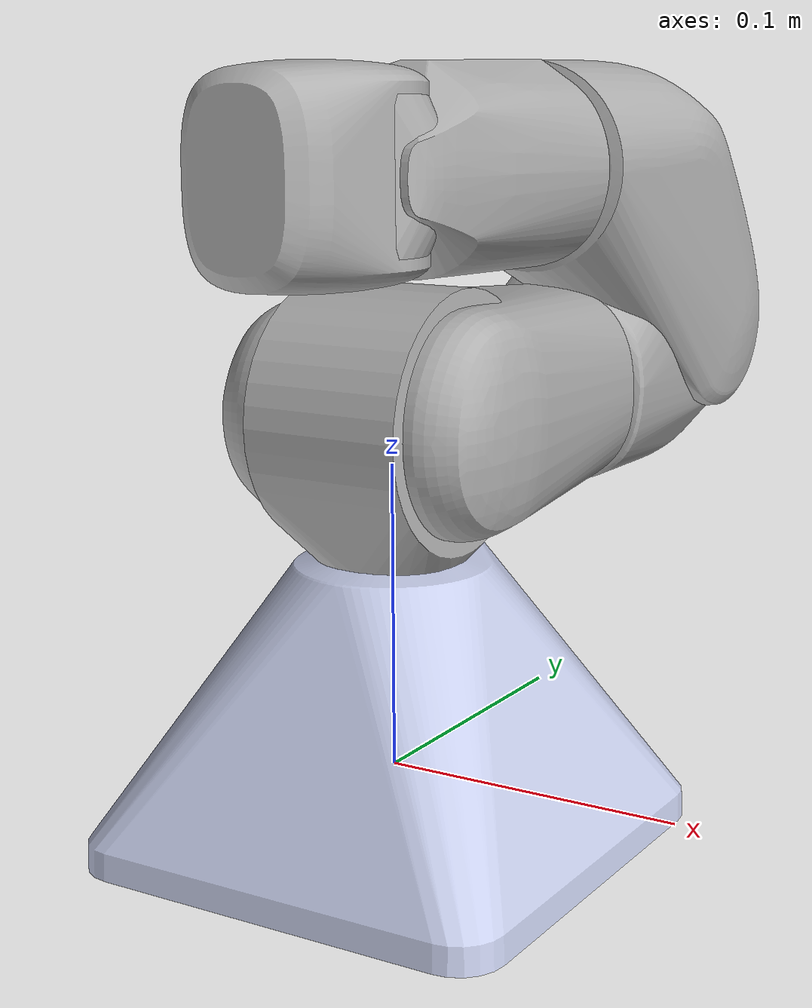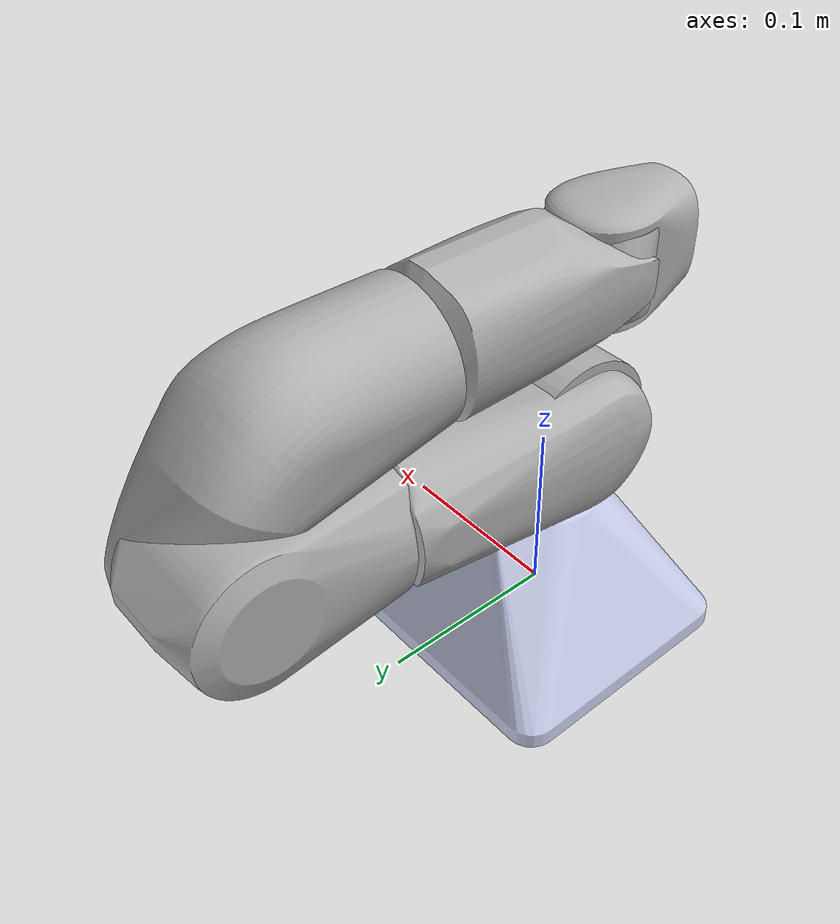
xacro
<?xml version="1.0"?>
<robot xmlns:xacro="http://www.ros.org/wiki/xacro" name="R1_Robotic_Arm">

  <!-- mesh 路径前缀：ROS2 默认 package://；MuJoCo 等外部工具用
       xacro ... mesh_prefix:=/abs/path/to/meshes 覆盖 -->
  <xacro:arg name="mesh_prefix" default="package://r1_arm_description/meshes"/>

  <!-- 法兰面相对 Link7 原点的偏移，待实测标定后修改 -->
  <xacro:property name="tool0_xyz" value="0 0 0"/>

  <material name="silvery">
    <color rgba="0.79216 0.81961 0.93333 1"/>
  </material>
  <material name="dark_gray">
    <color rgba="0.69804 0.69804 0.69804 1"/>
  </material>

  <xacro:macro name="r1_link"
               params="name mass com ixx ixy ixz iyy iyz izz material_name">
    <link name="${name}">
      <inertial>
        <origin xyz="${com}" rpy="0 0 0"/>
        <mass value="${mass}"/>
        <inertia ixx="${ixx}" ixy="${ixy}" ixz="${ixz}"
                 iyy="${iyy}" iyz="${iyz}" izz="${izz}"/>
      </inertial>
      <visual>
        <origin xyz="0 0 0" rpy="0 0 0"/>
        <geometry>
          <mesh filename="$(arg mesh_prefix)/visual/${name}.STL"/>
        </geometry>
        <material name="${material_name}"/>
      </visual>
      <collision>
        <origin xyz="0 0 0" rpy="0 0 0"/>
        <geometry>
          <mesh filename="$(arg mesh_prefix)/collision/${name}.STL"/>
        </geometry>
      </collision>
    </link>
  </xacro:macro>

  <xacro:macro name="r1_joint"
               params="name parent child xyz rpy axis lower upper effort velocity">
    <joint name="${name}" type="revolute">
      <origin xyz="${xyz}" rpy="${rpy}"/>
      <parent link="${parent}"/>
      <child link="${child}"/>
      <axis xyz="${axis}"/>
      <limit lower="${lower}" upper="${upper}" effort="${effort}" velocity="${velocity}"/>
    </joint>
  </xacro:macro>

  <!-- ===================== links（官方 inertial 参数） ===================== -->
  <xacro:r1_link name="base_link" mass="1.7759"
    com="-0.00010643 0.0010041 0.023203"
    ixx="0.0014112" ixy="1.7968E-06" ixz="1.2255E-06"
    iyy="0.001783"  iyz="-8.2296E-06" izz="0.0025584"
    material_name="silvery"/>

  <xacro:r1_link name="Link1" mass="0.89452"
    com="2.156E-08 -9.6233E-09 0.045314"
    ixx="0.00082526" ixy="1.1484E-09" ixz="-7.1331E-10"
    iyy="0.0006531"  iyz="5.9698E-10" izz="0.00059909"
    material_name="dark_gray"/>

  <xacro:r1_link name="Link2" mass="0.74773"
    com="0.0017013 0.063321 -0.0042531"
    ixx="0.001137" ixy="9.3E-05" ixz="-6E-06"
    iyy="0.000672" iyz="3.2E-05" izz="0.001314"
    material_name="dark_gray"/>

  <xacro:r1_link name="Link3" mass="0.71845"
    com="-0.0062069 0.075751 0.012556"
    ixx="0.000746" ixy="2.9E-05" ixz="1.3E-05"
    iyy="0.000558" iyz="-0.000086" izz="0.000728"
    material_name="dark_gray"/>

  <xacro:r1_link name="Link4" mass="0.85572"
    com="-0.020915 -0.070455 0.060056"
    ixx="0.001009" ixy="-8.4E-05" ixz="6.3E-05"
    iyy="0.000707" iyz="0.000139" izz="0.00093"
    material_name="dark_gray"/>

  <xacro:r1_link name="Link5" mass="0.59294"
    com="0.00042498 -0.043121 0.00020709"
    ixx="0.000506" ixy="2E-06" ixz="-1E-06"
    iyy="0.000349" iyz="-1E-06" izz="0.000501"
    material_name="dark_gray"/>

  <xacro:r1_link name="Link6" mass="0.391"
    com="-1.3033E-07 -0.0098039 8.3267E-17"
    ixx="0.00014242" ixy="0" ixz="0"
    iyy="0.00014737" iyz="0" izz="0.00015188"
    material_name="dark_gray"/>

  <xacro:r1_link name="Link7" mass="0.1048"
    com="-3.7143E-07 -0.018577 0.00595"
    ixx="0.000105" ixy="0" ixz="0"
    iyy="7.3E-05" iyz="0" izz="6.7E-05"
    material_name="dark_gray"/>

  <!-- ===================== joints（官方 origin/axis/limit，勿改） ===================== -->
  <xacro:r1_joint name="J1" parent="base_link" child="Link1"
    xyz="0 0 0.069" rpy="0 0 0" axis="0 0 -1"
    lower="-2.723" upper="2.723" effort="60" velocity="18.7"/>

  <xacro:r1_joint name="J2" parent="Link1" child="Link2"
    xyz="0 0 0.0469" rpy="0 0 0" axis="1 0 0"
    lower="0" upper="3.1416" effort="60" velocity="18.7"/>

  <xacro:r1_joint name="J3" parent="Link2" child="Link3"
    xyz="0 0.1085 -0.0047926" rpy="0 0 0" axis="0 1 0"
    lower="-0.349" upper="3.491" effort="33" velocity="33.4"/>

  <xacro:r1_joint name="J4" parent="Link3" child="Link4"
    xyz="0.025 0.082408 0.016191" rpy="0 0 0" axis="1 0 0"
    lower="-3.1415" upper="0" effort="33" velocity="33.4"/>

  <xacro:r1_joint name="J5" parent="Link4" child="Link5"
    xyz="-0.022314 -0.10786 0.062877" rpy="-0.017453 0 0" axis="0 1 0"
    lower="-2.269" upper="2.269" effort="33" velocity="33.4"/>

  <xacro:r1_joint name="J6" parent="Link5" child="Link6"
    xyz="-1.1462E-05 -0.1072 0.00069991" rpy="0 -0.016375 0" axis="-1 0 0"
    lower="-0.524" upper="0.524" effort="10" velocity="37.7"/>

  <xacro:r1_joint name="J7" parent="Link6" child="Link7"
    xyz="0 -0.01 0" rpy="-3.1416 0 -3.1416" axis="0 0 -1"
    lower="-1.571" upper="1.571" effort="10" velocity="37.7"/>

  <!-- ===================== 末端法兰工具坐标系 ===================== -->
  <link name="tool0"/>
  <joint name="tool0_joint" type="fixed">
    <parent link="Link7"/>
    <child link="tool0"/>
    <!-- Ry(pi)：tool0 的 Z 轴 = Link7 的 -Z（J7 法兰旋转轴指向外侧），
         零位时 tool0 近似与 base_link 对齐（残余 ~1.33° 为真实链条几何） -->
    <origin xyz="${tool0_xyz}" rpy="${pi} 0 ${pi}"/>
  </joint>

</robot>
